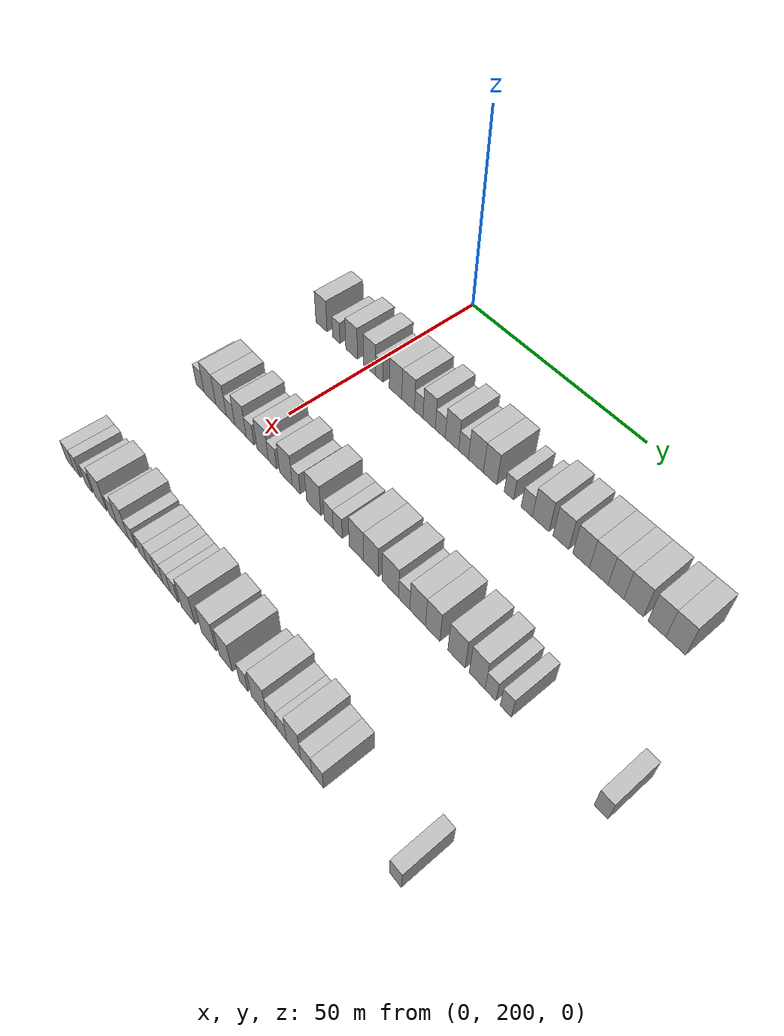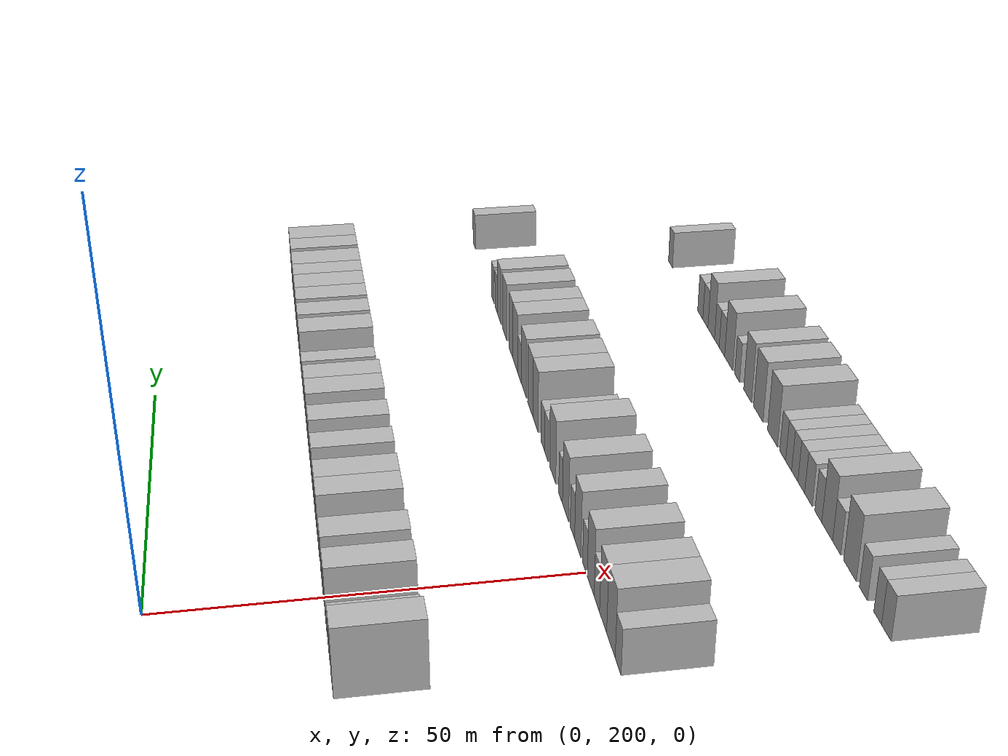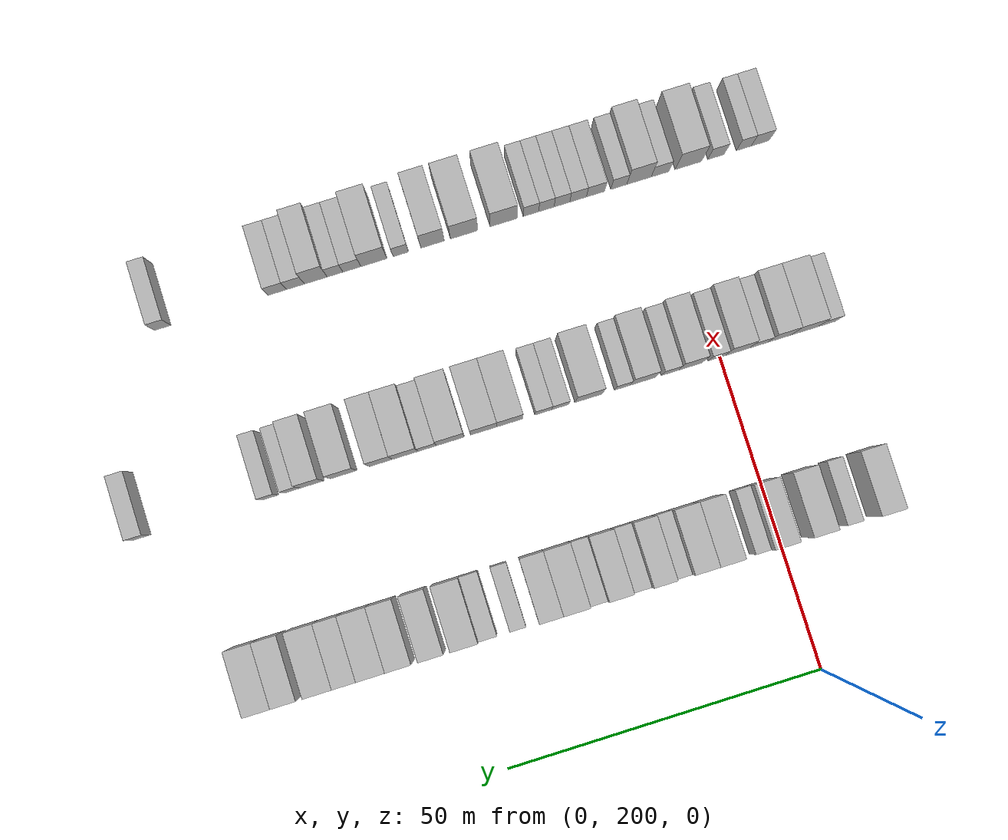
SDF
<sdf version="1.6">
 <world name="default">
  <model name="building_121">
   <static>1</static>
   <pose>25.0000 184.2802 0 0.000000 0.000000 0.000000</pose>
   <link name="link">
    <pose>0 0 4.50 0 0 0</pose>
    <collision name="collision"><geometry><box><size>10.0000 3.9417 9.0000</size></box></geometry></collision>
    <visual name="visual">
     <cast_shadows>0</cast_shadows>
     <geometry><box><size>10.0000 3.9417 9.0000</size></box></geometry>
     <material>
      <script>
       <uri>model://HANNAS_wall/materials/scripts</uri>
       <uri>model://HANNAS_wall/materials/textures</uri>
       <name>vrc/HANNAS_wall</name>
      </script>
     </material>
    </visual>
   </link>
  </model>
  <model name="building_122">
   <static>1</static>
   <pose>25.0000 189.5035 0 0.000000 0.000000 0.000000</pose>
   <link name="link">
    <pose>0 0 3.00 0 0 0</pose>
    <collision name="collision"><geometry><box><size>10.0000 2.5050 6.0000</size></box></geometry></collision>
    <visual name="visual">
     <cast_shadows>0</cast_shadows>
     <geometry><box><size>10.0000 2.5050 6.0000</size></box></geometry>
     <material>
      <script>
       <uri>model://HANNAS_wall/materials/scripts</uri>
       <uri>model://HANNAS_wall/materials/textures</uri>
       <name>vrc/HANNAS_wall</name>
      </script>
     </material>
    </visual>
   </link>
  </model>
  <model name="building_123">
   <static>1</static>
   <pose>25.0000 194.7301 0 0.000000 0.000000 0.000000</pose>
   <link name="link">
    <pose>0 0 4.50 0 0 0</pose>
    <collision name="collision"><geometry><box><size>10.0000 3.9481 9.0000</size></box></geometry></collision>
    <visual name="visual">
     <cast_shadows>0</cast_shadows>
     <geometry><box><size>10.0000 3.9481 9.0000</size></box></geometry>
     <material>
      <script>
       <uri>model://HANNAS_wall/materials/scripts</uri>
       <uri>model://HANNAS_wall/materials/textures</uri>
       <name>vrc/HANNAS_wall</name>
      </script>
     </material>
    </visual>
   </link>
  </model>
  <model name="building_124">
   <static>1</static>
   <pose>25.0000 200.7020 0 0.000000 0.000000 0.000000</pose>
   <link name="link">
    <pose>0 0 4.50 0 0 0</pose>
    <collision name="collision"><geometry><box><size>10.0000 3.9956 9.0000</size></box></geometry></collision>
    <visual name="visual">
     <cast_shadows>0</cast_shadows>
     <geometry><box><size>10.0000 3.9956 9.0000</size></box></geometry>
     <material>
      <script>
       <uri>model://HANNAS_wall/materials/scripts</uri>
       <uri>model://HANNAS_wall/materials/textures</uri>
       <name>vrc/HANNAS_wall</name>
      </script>
     </material>
    </visual>
   </link>
  </model>
  <model name="building_125">
   <static>1</static>
   <pose>25.0000 203.9159 0 0.000000 0.000000 0.000000</pose>
   <link name="link">
    <pose>0 0 3.00 0 0 0</pose>
    <collision name="collision"><geometry><box><size>10.0000 2.4323 6.0000</size></box></geometry></collision>
    <visual name="visual">
     <cast_shadows>0</cast_shadows>
     <geometry><box><size>10.0000 2.4323 6.0000</size></box></geometry>
     <material>
      <script>
       <uri>model://HANNAS_wall/materials/scripts</uri>
       <uri>model://HANNAS_wall/materials/textures</uri>
       <name>vrc/HANNAS_wall</name>
      </script>
     </material>
    </visual>
   </link>
  </model>
  <model name="building_126">
   <static>1</static>
   <pose>25.0000 209.1071 0 0.000000 0.000000 0.000000</pose>
   <link name="link">
    <pose>0 0 4.50 0 0 0</pose>
    <collision name="collision"><geometry><box><size>10.0000 3.9500 9.0000</size></box></geometry></collision>
    <visual name="visual">
     <cast_shadows>0</cast_shadows>
     <geometry><box><size>10.0000 3.9500 9.0000</size></box></geometry>
     <material>
      <script>
       <uri>model://HANNAS_wall/materials/scripts</uri>
       <uri>model://HANNAS_wall/materials/textures</uri>
       <name>vrc/HANNAS_wall</name>
      </script>
     </material>
    </visual>
   </link>
  </model>
  <model name="building_127">
   <static>1</static>
   <pose>25.0000 213.0490 0 0.000000 0.000000 0.000000</pose>
   <link name="link">
    <pose>0 0 4.50 0 0 0</pose>
    <collision name="collision"><geometry><box><size>10.0000 3.9339 9.0000</size></box></geometry></collision>
    <visual name="visual">
     <cast_shadows>0</cast_shadows>
     <geometry><box><size>10.0000 3.9339 9.0000</size></box></geometry>
     <material>
      <script>
       <uri>model://HANNAS_wall/materials/scripts</uri>
       <uri>model://HANNAS_wall/materials/textures</uri>
       <name>vrc/HANNAS_wall</name>
      </script>
     </material>
    </visual>
   </link>
  </model>
  <model name="building_128">
   <static>1</static>
   <pose>25.0000 216.3287 0 0.000000 0.000000 0.000000</pose>
   <link name="link">
    <pose>0 0 3.00 0 0 0</pose>
    <collision name="collision"><geometry><box><size>10.0000 2.6254 6.0000</size></box></geometry></collision>
    <visual name="visual">
     <cast_shadows>0</cast_shadows>
     <geometry><box><size>10.0000 2.6254 6.0000</size></box></geometry>
     <material>
      <script>
       <uri>model://HANNAS_wall/materials/scripts</uri>
       <uri>model://HANNAS_wall/materials/textures</uri>
       <name>vrc/HANNAS_wall</name>
      </script>
     </material>
    </visual>
   </link>
  </model>
  <model name="building_129">
   <static>1</static>
   <pose>25.0000 219.4805 0 0.000000 0.000000 0.000000</pose>
   <link name="link">
    <pose>0 0 4.50 0 0 0</pose>
    <collision name="collision"><geometry><box><size>10.0000 3.6783 9.0000</size></box></geometry></collision>
    <visual name="visual">
     <cast_shadows>0</cast_shadows>
     <geometry><box><size>10.0000 3.6783 9.0000</size></box></geometry>
     <material>
      <script>
       <uri>model://HANNAS_wall/materials/scripts</uri>
       <uri>model://HANNAS_wall/materials/textures</uri>
       <name>vrc/HANNAS_wall</name>
      </script>
     </material>
    </visual>
   </link>
  </model>
  <model name="building_130">
   <static>1</static>
   <pose>25.0000 222.8057 0 0.000000 0.000000 0.000000</pose>
   <link name="link">
    <pose>0 0 3.00 0 0 0</pose>
    <collision name="collision"><geometry><box><size>10.0000 2.9721 6.0000</size></box></geometry></collision>
    <visual name="visual">
     <cast_shadows>0</cast_shadows>
     <geometry><box><size>10.0000 2.9721 6.0000</size></box></geometry>
     <material>
      <script>
       <uri>model://HANNAS_wall/materials/scripts</uri>
       <uri>model://HANNAS_wall/materials/textures</uri>
       <name>vrc/HANNAS_wall</name>
      </script>
     </material>
    </visual>
   </link>
  </model>
  <model name="building_131">
   <static>1</static>
   <pose>25.0000 226.2292 0 0.000000 0.000000 0.000000</pose>
   <link name="link">
    <pose>0 0 4.50 0 0 0</pose>
    <collision name="collision"><geometry><box><size>10.0000 3.8749 9.0000</size></box></geometry></collision>
    <visual name="visual">
     <cast_shadows>0</cast_shadows>
     <geometry><box><size>10.0000 3.8749 9.0000</size></box></geometry>
     <material>
      <script>
       <uri>model://HANNAS_wall/materials/scripts</uri>
       <uri>model://HANNAS_wall/materials/textures</uri>
       <name>vrc/HANNAS_wall</name>
      </script>
     </material>
    </visual>
   </link>
  </model>
  <model name="building_132">
   <static>1</static>
   <pose>25.0000 229.5752 0 0.000000 0.000000 0.000000</pose>
   <link name="link">
    <pose>0 0 3.00 0 0 0</pose>
    <collision name="collision"><geometry><box><size>10.0000 2.8172 6.0000</size></box></geometry></collision>
    <visual name="visual">
     <cast_shadows>0</cast_shadows>
     <geometry><box><size>10.0000 2.8172 6.0000</size></box></geometry>
     <material>
      <script>
       <uri>model://HANNAS_wall/materials/scripts</uri>
       <uri>model://HANNAS_wall/materials/textures</uri>
       <name>vrc/HANNAS_wall</name>
      </script>
     </material>
    </visual>
   </link>
  </model>
  <model name="building_133">
   <static>1</static>
   <pose>25.0000 233.0769 0 0.000000 0.000000 0.000000</pose>
   <link name="link">
    <pose>0 0 4.50 0 0 0</pose>
    <collision name="collision"><geometry><box><size>10.0000 4.1862 9.0000</size></box></geometry></collision>
    <visual name="visual">
     <cast_shadows>0</cast_shadows>
     <geometry><box><size>10.0000 4.1862 9.0000</size></box></geometry>
     <material>
      <script>
       <uri>model://HANNAS_wall/materials/scripts</uri>
       <uri>model://HANNAS_wall/materials/textures</uri>
       <name>vrc/HANNAS_wall</name>
      </script>
     </material>
    </visual>
   </link>
  </model>
  <model name="building_134">
   <static>1</static>
   <pose>25.0000 237.0328 0 0.000000 0.000000 0.000000</pose>
   <link name="link">
    <pose>0 0 4.50 0 0 0</pose>
    <collision name="collision"><geometry><box><size>10.0000 3.7256 9.0000</size></box></geometry></collision>
    <visual name="visual">
     <cast_shadows>0</cast_shadows>
     <geometry><box><size>10.0000 3.7256 9.0000</size></box></geometry>
     <material>
      <script>
       <uri>model://HANNAS_wall/materials/scripts</uri>
       <uri>model://HANNAS_wall/materials/textures</uri>
       <name>vrc/HANNAS_wall</name>
      </script>
     </material>
    </visual>
   </link>
  </model>
  <model name="building_135">
   <static>1</static>
   <pose>25.0000 242.1556 0 0.000000 0.000000 0.000000</pose>
   <link name="link">
    <pose>0 0 3.00 0 0 0</pose>
    <collision name="collision"><geometry><box><size>10.0000 2.5200 6.0000</size></box></geometry></collision>
    <visual name="visual">
     <cast_shadows>0</cast_shadows>
     <geometry><box><size>10.0000 2.5200 6.0000</size></box></geometry>
     <material>
      <script>
       <uri>model://HANNAS_wall/materials/scripts</uri>
       <uri>model://HANNAS_wall/materials/textures</uri>
       <name>vrc/HANNAS_wall</name>
      </script>
     </material>
    </visual>
   </link>
  </model>
  <model name="building_136">
   <static>1</static>
   <pose>25.0000 246.8641 0 0.000000 0.000000 0.000000</pose>
   <link name="link">
    <pose>0 0 3.00 0 0 0</pose>
    <collision name="collision"><geometry><box><size>10.0000 2.8969 6.0000</size></box></geometry></collision>
    <visual name="visual">
     <cast_shadows>0</cast_shadows>
     <geometry><box><size>10.0000 2.8969 6.0000</size></box></geometry>
     <material>
      <script>
       <uri>model://HANNAS_wall/materials/scripts</uri>
       <uri>model://HANNAS_wall/materials/textures</uri>
       <name>vrc/HANNAS_wall</name>
      </script>
     </material>
    </visual>
   </link>
  </model>
  <model name="building_137">
   <static>1</static>
   <pose>25.0000 250.4472 0 0.000000 0.000000 0.000000</pose>
   <link name="link">
    <pose>0 0 4.50 0 0 0</pose>
    <collision name="collision"><geometry><box><size>10.0000 4.2694 9.0000</size></box></geometry></collision>
    <visual name="visual">
     <cast_shadows>0</cast_shadows>
     <geometry><box><size>10.0000 4.2694 9.0000</size></box></geometry>
     <material>
      <script>
       <uri>model://HANNAS_wall/materials/scripts</uri>
       <uri>model://HANNAS_wall/materials/textures</uri>
       <name>vrc/HANNAS_wall</name>
      </script>
     </material>
    </visual>
   </link>
  </model>
  <model name="building_138">
   <static>1</static>
   <pose>25.0000 255.5401 0 0.000000 0.000000 0.000000</pose>
   <link name="link">
    <pose>0 0 4.50 0 0 0</pose>
    <collision name="collision"><geometry><box><size>10.0000 3.9164 9.0000</size></box></geometry></collision>
    <visual name="visual">
     <cast_shadows>0</cast_shadows>
     <geometry><box><size>10.0000 3.9164 9.0000</size></box></geometry>
     <material>
      <script>
       <uri>model://HANNAS_wall/materials/scripts</uri>
       <uri>model://HANNAS_wall/materials/textures</uri>
       <name>vrc/HANNAS_wall</name>
      </script>
     </material>
    </visual>
   </link>
  </model>
  <model name="building_139">
   <static>1</static>
   <pose>25.0000 260.5025 0 0.000000 0.000000 0.000000</pose>
   <link name="link">
    <pose>0 0 4.50 0 0 0</pose>
    <collision name="collision"><geometry><box><size>10.0000 4.0082 9.0000</size></box></geometry></collision>
    <visual name="visual">
     <cast_shadows>0</cast_shadows>
     <geometry><box><size>10.0000 4.0082 9.0000</size></box></geometry>
     <material>
      <script>
       <uri>model://HANNAS_wall/materials/scripts</uri>
       <uri>model://HANNAS_wall/materials/textures</uri>
       <name>vrc/HANNAS_wall</name>
      </script>
     </material>
    </visual>
   </link>
  </model>
  <model name="building_140">
   <static>1</static>
   <pose>25.0000 264.7097 0 0.000000 0.000000 0.000000</pose>
   <link name="link">
    <pose>0 0 4.50 0 0 0</pose>
    <collision name="collision"><geometry><box><size>10.0000 4.4063 9.0000</size></box></geometry></collision>
    <visual name="visual">
     <cast_shadows>0</cast_shadows>
     <geometry><box><size>10.0000 4.4063 9.0000</size></box></geometry>
     <material>
      <script>
       <uri>model://HANNAS_wall/materials/scripts</uri>
       <uri>model://HANNAS_wall/materials/textures</uri>
       <name>vrc/HANNAS_wall</name>
      </script>
     </material>
    </visual>
   </link>
  </model>
  <model name="building_141">
   <static>1</static>
   <pose>25.0000 268.7446 0 0.000000 0.000000 0.000000</pose>
   <link name="link">
    <pose>0 0 4.50 0 0 0</pose>
    <collision name="collision"><geometry><box><size>10.0000 3.6635 9.0000</size></box></geometry></collision>
    <visual name="visual">
     <cast_shadows>0</cast_shadows>
     <geometry><box><size>10.0000 3.6635 9.0000</size></box></geometry>
     <material>
      <script>
       <uri>model://HANNAS_wall/materials/scripts</uri>
       <uri>model://HANNAS_wall/materials/textures</uri>
       <name>vrc/HANNAS_wall</name>
      </script>
     </material>
    </visual>
   </link>
  </model>
  <model name="building_142">
   <static>1</static>
   <pose>25.0000 272.8076 0 0.000000 0.000000 0.000000</pose>
   <link name="link">
    <pose>0 0 4.50 0 0 0</pose>
    <collision name="collision"><geometry><box><size>10.0000 4.4627 9.0000</size></box></geometry></collision>
    <visual name="visual">
     <cast_shadows>0</cast_shadows>
     <geometry><box><size>10.0000 4.4627 9.0000</size></box></geometry>
     <material>
      <script>
       <uri>model://HANNAS_wall/materials/scripts</uri>
       <uri>model://HANNAS_wall/materials/textures</uri>
       <name>vrc/HANNAS_wall</name>
      </script>
     </material>
    </visual>
   </link>
  </model>
  <model name="building_143">
   <static>1</static>
   <pose>25.0000 277.9906 0 0.000000 0.000000 0.000000</pose>
   <link name="link">
    <pose>0 0 4.50 0 0 0</pose>
    <collision name="collision"><geometry><box><size>10.0000 3.9032 9.0000</size></box></geometry></collision>
    <visual name="visual">
     <cast_shadows>0</cast_shadows>
     <geometry><box><size>10.0000 3.9032 9.0000</size></box></geometry>
     <material>
      <script>
       <uri>model://HANNAS_wall/materials/scripts</uri>
       <uri>model://HANNAS_wall/materials/textures</uri>
       <name>vrc/HANNAS_wall</name>
      </script>
     </material>
    </visual>
   </link>
  </model>
  <model name="building_144">
   <static>1</static>
   <pose>25.0000 282.0824 0 0.000000 0.000000 0.000000</pose>
   <link name="link">
    <pose>0 0 4.50 0 0 0</pose>
    <collision name="collision"><geometry><box><size>10.0000 4.2804 9.0000</size></box></geometry></collision>
    <visual name="visual">
     <cast_shadows>0</cast_shadows>
     <geometry><box><size>10.0000 4.2804 9.0000</size></box></geometry>
     <material>
      <script>
       <uri>model://HANNAS_wall/materials/scripts</uri>
       <uri>model://HANNAS_wall/materials/textures</uri>
       <name>vrc/HANNAS_wall</name>
      </script>
     </material>
    </visual>
   </link>
  </model>
  <model name="building_259">
   <static>1</static>
   <pose>55.0000 182.7832 0 0.000000 0.000000 0.000000</pose>
   <link name="link">
    <pose>0 0 3.00 0 0 0</pose>
    <collision name="collision"><geometry><box><size>10.0000 2.9345 6.0000</size></box></geometry></collision>
    <visual name="visual">
     <cast_shadows>0</cast_shadows>
     <geometry><box><size>10.0000 2.9345 6.0000</size></box></geometry>
     <material>
      <script>
       <uri>model://HANNAS_wall/materials/scripts</uri>
       <uri>model://HANNAS_wall/materials/textures</uri>
       <name>vrc/HANNAS_wall</name>
      </script>
     </material>
    </visual>
   </link>
  </model>
  <model name="building_260">
   <static>1</static>
   <pose>55.0000 186.4352 0 0.000000 0.000000 0.000000</pose>
   <link name="link">
    <pose>0 0 4.50 0 0 0</pose>
    <collision name="collision"><geometry><box><size>10.0000 4.3695 9.0000</size></box></geometry></collision>
    <visual name="visual">
     <cast_shadows>0</cast_shadows>
     <geometry><box><size>10.0000 4.3695 9.0000</size></box></geometry>
     <material>
      <script>
       <uri>model://HANNAS_wall/materials/scripts</uri>
       <uri>model://HANNAS_wall/materials/textures</uri>
       <name>vrc/HANNAS_wall</name>
      </script>
     </material>
    </visual>
   </link>
  </model>
  <model name="building_261">
   <static>1</static>
   <pose>55.0000 190.5008 0 0.000000 0.000000 0.000000</pose>
   <link name="link">
    <pose>0 0 4.50 0 0 0</pose>
    <collision name="collision"><geometry><box><size>10.0000 3.7615 9.0000</size></box></geometry></collision>
    <visual name="visual">
     <cast_shadows>0</cast_shadows>
     <geometry><box><size>10.0000 3.7615 9.0000</size></box></geometry>
     <material>
      <script>
       <uri>model://HANNAS_wall/materials/scripts</uri>
       <uri>model://HANNAS_wall/materials/textures</uri>
       <name>vrc/HANNAS_wall</name>
      </script>
     </material>
    </visual>
   </link>
  </model>
  <model name="building_262">
   <static>1</static>
   <pose>55.0000 193.8771 0 0.000000 0.000000 0.000000</pose>
   <link name="link">
    <pose>0 0 3.00 0 0 0</pose>
    <collision name="collision"><geometry><box><size>10.0000 2.9911 6.0000</size></box></geometry></collision>
    <visual name="visual">
     <cast_shadows>0</cast_shadows>
     <geometry><box><size>10.0000 2.9911 6.0000</size></box></geometry>
     <material>
      <script>
       <uri>model://HANNAS_wall/materials/scripts</uri>
       <uri>model://HANNAS_wall/materials/textures</uri>
       <name>vrc/HANNAS_wall</name>
      </script>
     </material>
    </visual>
   </link>
  </model>
  <model name="building_263">
   <static>1</static>
   <pose>55.0000 197.3403 0 0.000000 0.000000 0.000000</pose>
   <link name="link">
    <pose>0 0 4.50 0 0 0</pose>
    <collision name="collision"><geometry><box><size>10.0000 3.9353 9.0000</size></box></geometry></collision>
    <visual name="visual">
     <cast_shadows>0</cast_shadows>
     <geometry><box><size>10.0000 3.9353 9.0000</size></box></geometry>
     <material>
      <script>
       <uri>model://HANNAS_wall/materials/scripts</uri>
       <uri>model://HANNAS_wall/materials/textures</uri>
       <name>vrc/HANNAS_wall</name>
      </script>
     </material>
    </visual>
   </link>
  </model>
  <model name="building_264">
   <static>1</static>
   <pose>55.0000 200.6696 0 0.000000 0.000000 0.000000</pose>
   <link name="link">
    <pose>0 0 3.00 0 0 0</pose>
    <collision name="collision"><geometry><box><size>10.0000 2.7234 6.0000</size></box></geometry></collision>
    <visual name="visual">
     <cast_shadows>0</cast_shadows>
     <geometry><box><size>10.0000 2.7234 6.0000</size></box></geometry>
     <material>
      <script>
       <uri>model://HANNAS_wall/materials/scripts</uri>
       <uri>model://HANNAS_wall/materials/textures</uri>
       <name>vrc/HANNAS_wall</name>
      </script>
     </material>
    </visual>
   </link>
  </model>
  <model name="building_265">
   <static>1</static>
   <pose>55.0000 204.9313 0 0.000000 0.000000 0.000000</pose>
   <link name="link">
    <pose>0 0 4.50 0 0 0</pose>
    <collision name="collision"><geometry><box><size>10.0000 3.8001 9.0000</size></box></geometry></collision>
    <visual name="visual">
     <cast_shadows>0</cast_shadows>
     <geometry><box><size>10.0000 3.8001 9.0000</size></box></geometry>
     <material>
      <script>
       <uri>model://HANNAS_wall/materials/scripts</uri>
       <uri>model://HANNAS_wall/materials/textures</uri>
       <name>vrc/HANNAS_wall</name>
      </script>
     </material>
    </visual>
   </link>
  </model>
  <model name="building_266">
   <static>1</static>
   <pose>55.0000 208.2107 0 0.000000 0.000000 0.000000</pose>
   <link name="link">
    <pose>0 0 3.00 0 0 0</pose>
    <collision name="collision"><geometry><box><size>10.0000 2.7587 6.0000</size></box></geometry></collision>
    <visual name="visual">
     <cast_shadows>0</cast_shadows>
     <geometry><box><size>10.0000 2.7587 6.0000</size></box></geometry>
     <material>
      <script>
       <uri>model://HANNAS_wall/materials/scripts</uri>
       <uri>model://HANNAS_wall/materials/textures</uri>
       <name>vrc/HANNAS_wall</name>
      </script>
     </material>
    </visual>
   </link>
  </model>
  <model name="building_267">
   <static>1</static>
   <pose>55.0000 212.5977 0 0.000000 0.000000 0.000000</pose>
   <link name="link">
    <pose>0 0 4.50 0 0 0</pose>
    <collision name="collision"><geometry><box><size>10.0000 4.0152 9.0000</size></box></geometry></collision>
    <visual name="visual">
     <cast_shadows>0</cast_shadows>
     <geometry><box><size>10.0000 4.0152 9.0000</size></box></geometry>
     <material>
      <script>
       <uri>model://HANNAS_wall/materials/scripts</uri>
       <uri>model://HANNAS_wall/materials/textures</uri>
       <name>vrc/HANNAS_wall</name>
      </script>
     </material>
    </visual>
   </link>
  </model>
  <model name="building_268">
   <static>1</static>
   <pose>55.0000 215.8790 0 0.000000 0.000000 0.000000</pose>
   <link name="link">
    <pose>0 0 3.00 0 0 0</pose>
    <collision name="collision"><geometry><box><size>10.0000 2.5474 6.0000</size></box></geometry></collision>
    <visual name="visual">
     <cast_shadows>0</cast_shadows>
     <geometry><box><size>10.0000 2.5474 6.0000</size></box></geometry>
     <material>
      <script>
       <uri>model://HANNAS_wall/materials/scripts</uri>
       <uri>model://HANNAS_wall/materials/textures</uri>
       <name>vrc/HANNAS_wall</name>
      </script>
     </material>
    </visual>
   </link>
  </model>
  <model name="building_269">
   <static>1</static>
   <pose>55.0000 221.3424 0 0.000000 0.000000 0.000000</pose>
   <link name="link">
    <pose>0 0 4.50 0 0 0</pose>
    <collision name="collision"><geometry><box><size>10.0000 4.3794 9.0000</size></box></geometry></collision>
    <visual name="visual">
     <cast_shadows>0</cast_shadows>
     <geometry><box><size>10.0000 4.3794 9.0000</size></box></geometry>
     <material>
      <script>
       <uri>model://HANNAS_wall/materials/scripts</uri>
       <uri>model://HANNAS_wall/materials/textures</uri>
       <name>vrc/HANNAS_wall</name>
      </script>
     </material>
    </visual>
   </link>
  </model>
  <model name="building_270">
   <static>1</static>
   <pose>55.0000 225.8924 0 0.000000 0.000000 0.000000</pose>
   <link name="link">
    <pose>0 0 3.00 0 0 0</pose>
    <collision name="collision"><geometry><box><size>10.0000 2.7208 6.0000</size></box></geometry></collision>
    <visual name="visual">
     <cast_shadows>0</cast_shadows>
     <geometry><box><size>10.0000 2.7208 6.0000</size></box></geometry>
     <material>
      <script>
       <uri>model://HANNAS_wall/materials/scripts</uri>
       <uri>model://HANNAS_wall/materials/textures</uri>
       <name>vrc/HANNAS_wall</name>
      </script>
     </material>
    </visual>
   </link>
  </model>
  <model name="building_271">
   <static>1</static>
   <pose>55.0000 228.6070 0 0.000000 0.000000 0.000000</pose>
   <link name="link">
    <pose>0 0 3.00 0 0 0</pose>
    <collision name="collision"><geometry><box><size>10.0000 2.7084 6.0000</size></box></geometry></collision>
    <visual name="visual">
     <cast_shadows>0</cast_shadows>
     <geometry><box><size>10.0000 2.7084 6.0000</size></box></geometry>
     <material>
      <script>
       <uri>model://HANNAS_wall/materials/scripts</uri>
       <uri>model://HANNAS_wall/materials/textures</uri>
       <name>vrc/HANNAS_wall</name>
      </script>
     </material>
    </visual>
   </link>
  </model>
  <model name="building_272">
   <static>1</static>
   <pose>55.0000 234.0115 0 0.000000 0.000000 0.000000</pose>
   <link name="link">
    <pose>0 0 4.50 0 0 0</pose>
    <collision name="collision"><geometry><box><size>10.0000 4.1006 9.0000</size></box></geometry></collision>
    <visual name="visual">
     <cast_shadows>0</cast_shadows>
     <geometry><box><size>10.0000 4.1006 9.0000</size></box></geometry>
     <material>
      <script>
       <uri>model://HANNAS_wall/materials/scripts</uri>
       <uri>model://HANNAS_wall/materials/textures</uri>
       <name>vrc/HANNAS_wall</name>
      </script>
     </material>
    </visual>
   </link>
  </model>
  <model name="building_273">
   <static>1</static>
   <pose>55.0000 238.1693 0 0.000000 0.000000 0.000000</pose>
   <link name="link">
    <pose>0 0 4.50 0 0 0</pose>
    <collision name="collision"><geometry><box><size>10.0000 4.2151 9.0000</size></box></geometry></collision>
    <visual name="visual">
     <cast_shadows>0</cast_shadows>
     <geometry><box><size>10.0000 4.2151 9.0000</size></box></geometry>
     <material>
      <script>
       <uri>model://HANNAS_wall/materials/scripts</uri>
       <uri>model://HANNAS_wall/materials/textures</uri>
       <name>vrc/HANNAS_wall</name>
      </script>
     </material>
    </visual>
   </link>
  </model>
  <model name="building_274">
   <static>1</static>
   <pose>55.0000 243.5046 0 0.000000 0.000000 0.000000</pose>
   <link name="link">
    <pose>0 0 4.50 0 0 0</pose>
    <collision name="collision"><geometry><box><size>10.0000 4.4554 9.0000</size></box></geometry></collision>
    <visual name="visual">
     <cast_shadows>0</cast_shadows>
     <geometry><box><size>10.0000 4.4554 9.0000</size></box></geometry>
     <material>
      <script>
       <uri>model://HANNAS_wall/materials/scripts</uri>
       <uri>model://HANNAS_wall/materials/textures</uri>
       <name>vrc/HANNAS_wall</name>
      </script>
     </material>
    </visual>
   </link>
  </model>
  <model name="building_275">
   <static>1</static>
   <pose>55.0000 247.2227 0 0.000000 0.000000 0.000000</pose>
   <link name="link">
    <pose>0 0 3.00 0 0 0</pose>
    <collision name="collision"><geometry><box><size>10.0000 2.9808 6.0000</size></box></geometry></collision>
    <visual name="visual">
     <cast_shadows>0</cast_shadows>
     <geometry><box><size>10.0000 2.9808 6.0000</size></box></geometry>
     <material>
      <script>
       <uri>model://HANNAS_wall/materials/scripts</uri>
       <uri>model://HANNAS_wall/materials/textures</uri>
       <name>vrc/HANNAS_wall</name>
      </script>
     </material>
    </visual>
   </link>
  </model>
  <model name="building_276">
   <static>1</static>
   <pose>55.0000 250.7521 0 0.000000 0.000000 0.000000</pose>
   <link name="link">
    <pose>0 0 4.50 0 0 0</pose>
    <collision name="collision"><geometry><box><size>10.0000 4.0782 9.0000</size></box></geometry></collision>
    <visual name="visual">
     <cast_shadows>0</cast_shadows>
     <geometry><box><size>10.0000 4.0782 9.0000</size></box></geometry>
     <material>
      <script>
       <uri>model://HANNAS_wall/materials/scripts</uri>
       <uri>model://HANNAS_wall/materials/textures</uri>
       <name>vrc/HANNAS_wall</name>
      </script>
     </material>
    </visual>
   </link>
  </model>
  <model name="building_277">
   <static>1</static>
   <pose>55.0000 254.6385 0 0.000000 0.000000 0.000000</pose>
   <link name="link">
    <pose>0 0 4.50 0 0 0</pose>
    <collision name="collision"><geometry><box><size>10.0000 3.6945 9.0000</size></box></geometry></collision>
    <visual name="visual">
     <cast_shadows>0</cast_shadows>
     <geometry><box><size>10.0000 3.6945 9.0000</size></box></geometry>
     <material>
      <script>
       <uri>model://HANNAS_wall/materials/scripts</uri>
       <uri>model://HANNAS_wall/materials/textures</uri>
       <name>vrc/HANNAS_wall</name>
      </script>
     </material>
    </visual>
   </link>
  </model>
  <model name="building_278">
   <static>1</static>
   <pose>55.0000 260.6087 0 0.000000 0.000000 0.000000</pose>
   <link name="link">
    <pose>0 0 4.50 0 0 0</pose>
    <collision name="collision"><geometry><box><size>10.0000 4.2458 9.0000</size></box></geometry></collision>
    <visual name="visual">
     <cast_shadows>0</cast_shadows>
     <geometry><box><size>10.0000 4.2458 9.0000</size></box></geometry>
     <material>
      <script>
       <uri>model://HANNAS_wall/materials/scripts</uri>
       <uri>model://HANNAS_wall/materials/textures</uri>
       <name>vrc/HANNAS_wall</name>
      </script>
     </material>
    </visual>
   </link>
  </model>
  <model name="building_279">
   <static>1</static>
   <pose>55.0000 265.6155 0 0.000000 0.000000 0.000000</pose>
   <link name="link">
    <pose>0 0 4.50 0 0 0</pose>
    <collision name="collision"><geometry><box><size>10.0000 3.7677 9.0000</size></box></geometry></collision>
    <visual name="visual">
     <cast_shadows>0</cast_shadows>
     <geometry><box><size>10.0000 3.7677 9.0000</size></box></geometry>
     <material>
      <script>
       <uri>model://HANNAS_wall/materials/scripts</uri>
       <uri>model://HANNAS_wall/materials/textures</uri>
       <name>vrc/HANNAS_wall</name>
      </script>
     </material>
    </visual>
   </link>
  </model>
  <model name="building_280">
   <static>1</static>
   <pose>55.0000 268.7823 0 0.000000 0.000000 0.000000</pose>
   <link name="link">
    <pose>0 0 3.00 0 0 0</pose>
    <collision name="collision"><geometry><box><size>10.0000 2.5659 6.0000</size></box></geometry></collision>
    <visual name="visual">
     <cast_shadows>0</cast_shadows>
     <geometry><box><size>10.0000 2.5659 6.0000</size></box></geometry>
     <material>
      <script>
       <uri>model://HANNAS_wall/materials/scripts</uri>
       <uri>model://HANNAS_wall/materials/textures</uri>
       <name>vrc/HANNAS_wall</name>
      </script>
     </material>
    </visual>
   </link>
  </model>
  <model name="building_281">
   <static>1</static>
   <pose>55.0000 272.3461 0 0.000000 0.000000 0.000000</pose>
   <link name="link">
    <pose>0 0 3.00 0 0 0</pose>
    <collision name="collision"><geometry><box><size>10.0000 2.5616 6.0000</size></box></geometry></collision>
    <visual name="visual">
     <cast_shadows>0</cast_shadows>
     <geometry><box><size>10.0000 2.5616 6.0000</size></box></geometry>
     <material>
      <script>
       <uri>model://HANNAS_wall/materials/scripts</uri>
       <uri>model://HANNAS_wall/materials/textures</uri>
       <name>vrc/HANNAS_wall</name>
      </script>
     </material>
    </visual>
   </link>
  </model>
  <model name="building_282">
   <static>1</static>
   <pose>55.0000 292.7996 0 0.000000 0.000000 0.000000</pose>
   <link name="link">
    <pose>0 0 3.00 0 0 0</pose>
    <collision name="collision"><geometry><box><size>10.0000 2.7818 6.0000</size></box></geometry></collision>
    <visual name="visual">
     <cast_shadows>0</cast_shadows>
     <geometry><box><size>10.0000 2.7818 6.0000</size></box></geometry>
     <material>
      <script>
       <uri>model://HANNAS_wall/materials/scripts</uri>
       <uri>model://HANNAS_wall/materials/textures</uri>
       <name>vrc/HANNAS_wall</name>
      </script>
     </material>
    </visual>
   </link>
  </model>
  <model name="building_404">
   <static>1</static>
   <pose>85.0000 183.8022 0 0.000000 0.000000 0.000000</pose>
   <link name="link">
    <pose>0 0 3.00 0 0 0</pose>
    <collision name="collision"><geometry><box><size>10.0000 2.9568 6.0000</size></box></geometry></collision>
    <visual name="visual">
     <cast_shadows>0</cast_shadows>
     <geometry><box><size>10.0000 2.9568 6.0000</size></box></geometry>
     <material>
      <script>
       <uri>model://HANNAS_wall/materials/scripts</uri>
       <uri>model://HANNAS_wall/materials/textures</uri>
       <name>vrc/HANNAS_wall</name>
      </script>
     </material>
    </visual>
   </link>
  </model>
  <model name="building_405">
   <static>1</static>
   <pose>85.0000 186.4851 0 0.000000 0.000000 0.000000</pose>
   <link name="link">
    <pose>0 0 3.00 0 0 0</pose>
    <collision name="collision"><geometry><box><size>10.0000 2.4090 6.0000</size></box></geometry></collision>
    <visual name="visual">
     <cast_shadows>0</cast_shadows>
     <geometry><box><size>10.0000 2.4090 6.0000</size></box></geometry>
     <material>
      <script>
       <uri>model://HANNAS_wall/materials/scripts</uri>
       <uri>model://HANNAS_wall/materials/textures</uri>
       <name>vrc/HANNAS_wall</name>
      </script>
     </material>
    </visual>
   </link>
  </model>
  <model name="building_406">
   <static>1</static>
   <pose>85.0000 191.0293 0 0.000000 0.000000 0.000000</pose>
   <link name="link">
    <pose>0 0 3.00 0 0 0</pose>
    <collision name="collision"><geometry><box><size>10.0000 2.6794 6.0000</size></box></geometry></collision>
    <visual name="visual">
     <cast_shadows>0</cast_shadows>
     <geometry><box><size>10.0000 2.6794 6.0000</size></box></geometry>
     <material>
      <script>
       <uri>model://HANNAS_wall/materials/scripts</uri>
       <uri>model://HANNAS_wall/materials/textures</uri>
       <name>vrc/HANNAS_wall</name>
      </script>
     </material>
    </visual>
   </link>
  </model>
  <model name="building_407">
   <static>1</static>
   <pose>85.0000 195.5297 0 0.000000 0.000000 0.000000</pose>
   <link name="link">
    <pose>0 0 4.50 0 0 0</pose>
    <collision name="collision"><geometry><box><size>10.0000 4.3214 9.0000</size></box></geometry></collision>
    <visual name="visual">
     <cast_shadows>0</cast_shadows>
     <geometry><box><size>10.0000 4.3214 9.0000</size></box></geometry>
     <material>
      <script>
       <uri>model://HANNAS_wall/materials/scripts</uri>
       <uri>model://HANNAS_wall/materials/textures</uri>
       <name>vrc/HANNAS_wall</name>
      </script>
     </material>
    </visual>
   </link>
  </model>
  <model name="building_408">
   <static>1</static>
   <pose>85.0000 200.1468 0 0.000000 0.000000 0.000000</pose>
   <link name="link">
    <pose>0 0 3.00 0 0 0</pose>
    <collision name="collision"><geometry><box><size>10.0000 2.9127 6.0000</size></box></geometry></collision>
    <visual name="visual">
     <cast_shadows>0</cast_shadows>
     <geometry><box><size>10.0000 2.9127 6.0000</size></box></geometry>
     <material>
      <script>
       <uri>model://HANNAS_wall/materials/scripts</uri>
       <uri>model://HANNAS_wall/materials/textures</uri>
       <name>vrc/HANNAS_wall</name>
      </script>
     </material>
    </visual>
   </link>
  </model>
  <model name="building_409">
   <static>1</static>
   <pose>85.0000 203.5976 0 0.000000 0.000000 0.000000</pose>
   <link name="link">
    <pose>0 0 4.50 0 0 0</pose>
    <collision name="collision"><geometry><box><size>10.0000 3.9890 9.0000</size></box></geometry></collision>
    <visual name="visual">
     <cast_shadows>0</cast_shadows>
     <geometry><box><size>10.0000 3.9890 9.0000</size></box></geometry>
     <material>
      <script>
       <uri>model://HANNAS_wall/materials/scripts</uri>
       <uri>model://HANNAS_wall/materials/textures</uri>
       <name>vrc/HANNAS_wall</name>
      </script>
     </material>
    </visual>
   </link>
  </model>
  <model name="building_410">
   <static>1</static>
   <pose>85.0000 206.8913 0 0.000000 0.000000 0.000000</pose>
   <link name="link">
    <pose>0 0 3.00 0 0 0</pose>
    <collision name="collision"><geometry><box><size>10.0000 2.5983 6.0000</size></box></geometry></collision>
    <visual name="visual">
     <cast_shadows>0</cast_shadows>
     <geometry><box><size>10.0000 2.5983 6.0000</size></box></geometry>
     <material>
      <script>
       <uri>model://HANNAS_wall/materials/scripts</uri>
       <uri>model://HANNAS_wall/materials/textures</uri>
       <name>vrc/HANNAS_wall</name>
      </script>
     </material>
    </visual>
   </link>
  </model>
  <model name="building_411">
   <static>1</static>
   <pose>85.0000 210.6750 0 0.000000 0.000000 0.000000</pose>
   <link name="link">
    <pose>0 0 3.00 0 0 0</pose>
    <collision name="collision"><geometry><box><size>10.0000 2.9692 6.0000</size></box></geometry></collision>
    <visual name="visual">
     <cast_shadows>0</cast_shadows>
     <geometry><box><size>10.0000 2.9692 6.0000</size></box></geometry>
     <material>
      <script>
       <uri>model://HANNAS_wall/materials/scripts</uri>
       <uri>model://HANNAS_wall/materials/textures</uri>
       <name>vrc/HANNAS_wall</name>
      </script>
     </material>
    </visual>
   </link>
  </model>
  <model name="building_412">
   <static>1</static>
   <pose>85.0000 213.5154 0 0.000000 0.000000 0.000000</pose>
   <link name="link">
    <pose>0 0 3.00 0 0 0</pose>
    <collision name="collision"><geometry><box><size>10.0000 2.7115 6.0000</size></box></geometry></collision>
    <visual name="visual">
     <cast_shadows>0</cast_shadows>
     <geometry><box><size>10.0000 2.7115 6.0000</size></box></geometry>
     <material>
      <script>
       <uri>model://HANNAS_wall/materials/scripts</uri>
       <uri>model://HANNAS_wall/materials/textures</uri>
       <name>vrc/HANNAS_wall</name>
      </script>
     </material>
    </visual>
   </link>
  </model>
  <model name="building_413">
   <static>1</static>
   <pose>85.0000 216.1454 0 0.000000 0.000000 0.000000</pose>
   <link name="link">
    <pose>0 0 3.00 0 0 0</pose>
    <collision name="collision"><geometry><box><size>10.0000 2.5486 6.0000</size></box></geometry></collision>
    <visual name="visual">
     <cast_shadows>0</cast_shadows>
     <geometry><box><size>10.0000 2.5486 6.0000</size></box></geometry>
     <material>
      <script>
       <uri>model://HANNAS_wall/materials/scripts</uri>
       <uri>model://HANNAS_wall/materials/textures</uri>
       <name>vrc/HANNAS_wall</name>
      </script>
     </material>
    </visual>
   </link>
  </model>
  <model name="building_414">
   <static>1</static>
   <pose>85.0000 218.6717 0 0.000000 0.000000 0.000000</pose>
   <link name="link">
    <pose>0 0 3.00 0 0 0</pose>
    <collision name="collision"><geometry><box><size>10.0000 2.5039 6.0000</size></box></geometry></collision>
    <visual name="visual">
     <cast_shadows>0</cast_shadows>
     <geometry><box><size>10.0000 2.5039 6.0000</size></box></geometry>
     <material>
      <script>
       <uri>model://HANNAS_wall/materials/scripts</uri>
       <uri>model://HANNAS_wall/materials/textures</uri>
       <name>vrc/HANNAS_wall</name>
      </script>
     </material>
    </visual>
   </link>
  </model>
  <model name="building_415">
   <static>1</static>
   <pose>85.0000 221.1777 0 0.000000 0.000000 0.000000</pose>
   <link name="link">
    <pose>0 0 3.00 0 0 0</pose>
    <collision name="collision"><geometry><box><size>10.0000 2.5081 6.0000</size></box></geometry></collision>
    <visual name="visual">
     <cast_shadows>0</cast_shadows>
     <geometry><box><size>10.0000 2.5081 6.0000</size></box></geometry>
     <material>
      <script>
       <uri>model://HANNAS_wall/materials/scripts</uri>
       <uri>model://HANNAS_wall/materials/textures</uri>
       <name>vrc/HANNAS_wall</name>
      </script>
     </material>
    </visual>
   </link>
  </model>
  <model name="building_416">
   <static>1</static>
   <pose>85.0000 225.6254 0 0.000000 0.000000 0.000000</pose>
   <link name="link">
    <pose>0 0 4.50 0 0 0</pose>
    <collision name="collision"><geometry><box><size>10.0000 4.3872 9.0000</size></box></geometry></collision>
    <visual name="visual">
     <cast_shadows>0</cast_shadows>
     <geometry><box><size>10.0000 4.3872 9.0000</size></box></geometry>
     <material>
      <script>
       <uri>model://HANNAS_wall/materials/scripts</uri>
       <uri>model://HANNAS_wall/materials/textures</uri>
       <name>vrc/HANNAS_wall</name>
      </script>
     </material>
    </visual>
   </link>
  </model>
  <model name="building_417">
   <static>1</static>
   <pose>85.0000 232.0221 0 0.000000 0.000000 0.000000</pose>
   <link name="link">
    <pose>0 0 4.50 0 0 0</pose>
    <collision name="collision"><geometry><box><size>10.0000 4.4061 9.0000</size></box></geometry></collision>
    <visual name="visual">
     <cast_shadows>0</cast_shadows>
     <geometry><box><size>10.0000 4.4061 9.0000</size></box></geometry>
     <material>
      <script>
       <uri>model://HANNAS_wall/materials/scripts</uri>
       <uri>model://HANNAS_wall/materials/textures</uri>
       <name>vrc/HANNAS_wall</name>
      </script>
     </material>
    </visual>
   </link>
  </model>
  <model name="building_418">
   <static>1</static>
   <pose>85.0000 237.1236 0 0.000000 0.000000 0.000000</pose>
   <link name="link">
    <pose>0 0 4.50 0 0 0</pose>
    <collision name="collision"><geometry><box><size>10.0000 3.7969 9.0000</size></box></geometry></collision>
    <visual name="visual">
     <cast_shadows>0</cast_shadows>
     <geometry><box><size>10.0000 3.7969 9.0000</size></box></geometry>
     <material>
      <script>
       <uri>model://HANNAS_wall/materials/scripts</uri>
       <uri>model://HANNAS_wall/materials/textures</uri>
       <name>vrc/HANNAS_wall</name>
      </script>
     </material>
    </visual>
   </link>
  </model>
  <model name="building_419">
   <static>1</static>
   <pose>85.0000 242.2670 0 0.000000 0.000000 0.000000</pose>
   <link name="link">
    <pose>0 0 3.00 0 0 0</pose>
    <collision name="collision"><geometry><box><size>10.0000 2.4899 6.0000</size></box></geometry></collision>
    <visual name="visual">
     <cast_shadows>0</cast_shadows>
     <geometry><box><size>10.0000 2.4899 6.0000</size></box></geometry>
     <material>
      <script>
       <uri>model://HANNAS_wall/materials/scripts</uri>
       <uri>model://HANNAS_wall/materials/textures</uri>
       <name>vrc/HANNAS_wall</name>
      </script>
     </material>
    </visual>
   </link>
  </model>
  <model name="building_420">
   <static>1</static>
   <pose>85.0000 246.6180 0 0.000000 0.000000 0.000000</pose>
   <link name="link">
    <pose>0 0 4.50 0 0 0</pose>
    <collision name="collision"><geometry><box><size>10.0000 4.2120 9.0000</size></box></geometry></collision>
    <visual name="visual">
     <cast_shadows>0</cast_shadows>
     <geometry><box><size>10.0000 4.2120 9.0000</size></box></geometry>
     <material>
      <script>
       <uri>model://HANNAS_wall/materials/scripts</uri>
       <uri>model://HANNAS_wall/materials/textures</uri>
       <name>vrc/HANNAS_wall</name>
      </script>
     </material>
    </visual>
   </link>
  </model>
  <model name="building_421">
   <static>1</static>
   <pose>85.0000 250.1738 0 0.000000 0.000000 0.000000</pose>
   <link name="link">
    <pose>0 0 3.00 0 0 0</pose>
    <collision name="collision"><geometry><box><size>10.0000 2.8995 6.0000</size></box></geometry></collision>
    <visual name="visual">
     <cast_shadows>0</cast_shadows>
     <geometry><box><size>10.0000 2.8995 6.0000</size></box></geometry>
     <material>
      <script>
       <uri>model://HANNAS_wall/materials/scripts</uri>
       <uri>model://HANNAS_wall/materials/textures</uri>
       <name>vrc/HANNAS_wall</name>
      </script>
     </material>
    </visual>
   </link>
  </model>
  <model name="building_422">
   <static>1</static>
   <pose>85.0000 252.8966 0 0.000000 0.000000 0.000000</pose>
   <link name="link">
    <pose>0 0 3.00 0 0 0</pose>
    <collision name="collision"><geometry><box><size>10.0000 2.5461 6.0000</size></box></geometry></collision>
    <visual name="visual">
     <cast_shadows>0</cast_shadows>
     <geometry><box><size>10.0000 2.5461 6.0000</size></box></geometry>
     <material>
      <script>
       <uri>model://HANNAS_wall/materials/scripts</uri>
       <uri>model://HANNAS_wall/materials/textures</uri>
       <name>vrc/HANNAS_wall</name>
      </script>
     </material>
    </visual>
   </link>
  </model>
  <model name="building_423">
   <static>1</static>
   <pose>85.0000 256.0091 0 0.000000 0.000000 0.000000</pose>
   <link name="link">
    <pose>0 0 4.50 0 0 0</pose>
    <collision name="collision"><geometry><box><size>10.0000 3.6789 9.0000</size></box></geometry></collision>
    <visual name="visual">
     <cast_shadows>0</cast_shadows>
     <geometry><box><size>10.0000 3.6789 9.0000</size></box></geometry>
     <material>
      <script>
       <uri>model://HANNAS_wall/materials/scripts</uri>
       <uri>model://HANNAS_wall/materials/textures</uri>
       <name>vrc/HANNAS_wall</name>
      </script>
     </material>
    </visual>
   </link>
  </model>
  <model name="building_424">
   <static>1</static>
   <pose>85.0000 259.2999 0 0.000000 0.000000 0.000000</pose>
   <link name="link">
    <pose>0 0 3.00 0 0 0</pose>
    <collision name="collision"><geometry><box><size>10.0000 2.9026 6.0000</size></box></geometry></collision>
    <visual name="visual">
     <cast_shadows>0</cast_shadows>
     <geometry><box><size>10.0000 2.9026 6.0000</size></box></geometry>
     <material>
      <script>
       <uri>model://HANNAS_wall/materials/scripts</uri>
       <uri>model://HANNAS_wall/materials/textures</uri>
       <name>vrc/HANNAS_wall</name>
      </script>
     </material>
    </visual>
   </link>
  </model>
  <model name="building_425">
   <static>1</static>
   <pose>85.0000 262.2458 0 0.000000 0.000000 0.000000</pose>
   <link name="link">
    <pose>0 0 3.00 0 0 0</pose>
    <collision name="collision"><geometry><box><size>10.0000 2.9893 6.0000</size></box></geometry></collision>
    <visual name="visual">
     <cast_shadows>0</cast_shadows>
     <geometry><box><size>10.0000 2.9893 6.0000</size></box></geometry>
     <material>
      <script>
       <uri>model://HANNAS_wall/materials/scripts</uri>
       <uri>model://HANNAS_wall/materials/textures</uri>
       <name>vrc/HANNAS_wall</name>
      </script>
     </material>
    </visual>
   </link>
  </model>
  <model name="building_426">
   <static>1</static>
   <pose>85.0000 280.6944 0 0.000000 0.000000 0.000000</pose>
   <link name="link">
    <pose>0 0 3.00 0 0 0</pose>
    <collision name="collision"><geometry><box><size>10.0000 2.6360 6.0000</size></box></geometry></collision>
    <visual name="visual">
     <cast_shadows>0</cast_shadows>
     <geometry><box><size>10.0000 2.6360 6.0000</size></box></geometry>
     <material>
      <script>
       <uri>model://HANNAS_wall/materials/scripts</uri>
       <uri>model://HANNAS_wall/materials/textures</uri>
       <name>vrc/HANNAS_wall</name>
      </script>
     </material>
    </visual>
   </link>
  </model>
 </world>
</sdf>
